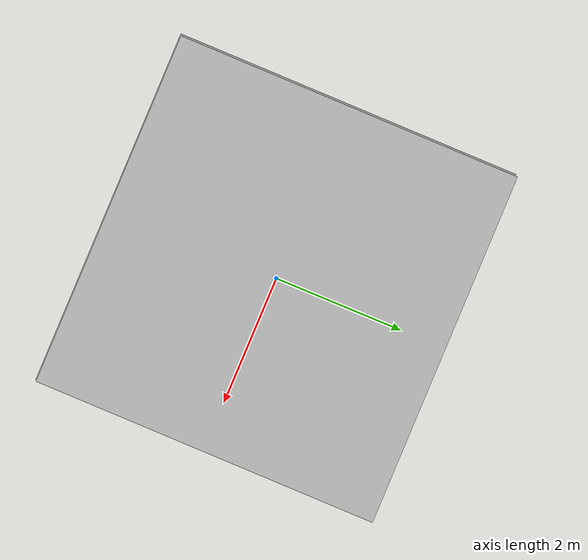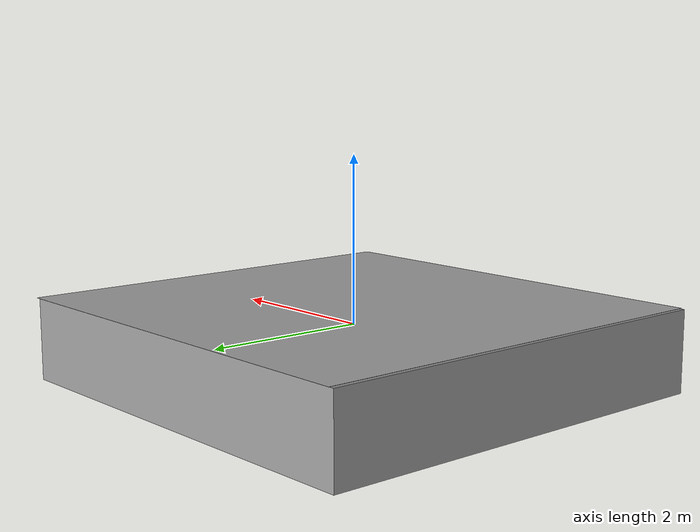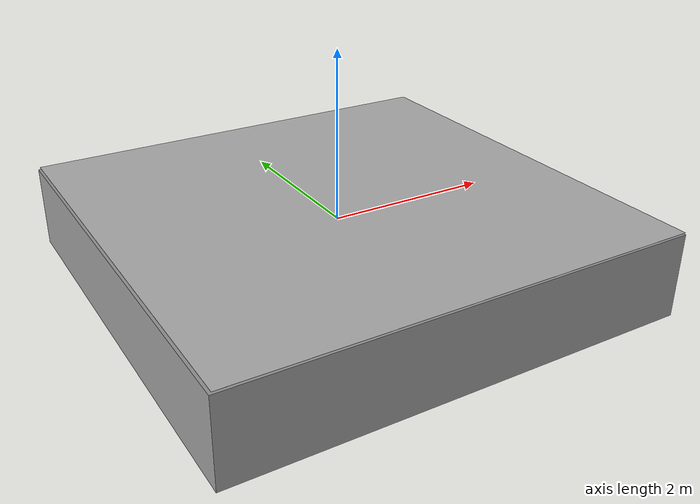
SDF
<?xml version='1.0'?>
<sdf version='1.6'>
  <model name='final_model'>
    <link name='link_0'>
      <pose frame=''>-0.010291 -0.012351 -0.256281 0 -0 0</pose>
      <inertial>
        <mass>28.9093</mass>
        <inertia>
          <ixx>69.8317</ixx>
          <ixy>0</ixy>
          <ixz>0</ixz>
          <iyy>74.3513</iyy>
          <iyz>0</iyz>
          <izz>139.365</izz>
        </inertia>
        <pose frame=''>0 0 0 0 -0 0</pose>
      </inertial>
      <gravity>1</gravity>
      <self_collide>0</self_collide>
      <kinematic>0</kinematic>
      <visual name='visual'>
        <pose frame=''>0 0 0 0 -0 0</pose>
        <geometry>
          <box>
            <size>5.46466 5.29024 1</size>
          </box>
        </geometry>
        <material>
          <lighting>1</lighting>
          <script>
            <uri>file://media/materials/scripts/gazebo.material</uri>
            <name>Gazebo/Grey</name>
          </script>
          <ambient>0.3 0.3 0.3 1</ambient>
          <diffuse>0.7 0.7 0.7 1</diffuse>
          <specular>0.01 0.01 0.01 1</specular>
          <emissive>0 0 0 1</emissive>
          <shader type='vertex'>
            <normal_map>__default__</normal_map>
          </shader>
        </material>
        <cast_shadows>1</cast_shadows>
        <transparency>0</transparency>
      </visual>
      <collision name='collision'>
        <laser_retro>0</laser_retro>
        <max_contacts>10</max_contacts>
        <pose frame=''>0 0 0 0 -0 0</pose>
        <geometry>
          <box>
            <size>5.46466 5.29024 1</size>
          </box>
        </geometry>
        <surface>
          <friction>
            <ode>
              <mu>1</mu>
              <mu2>1</mu2>
              <fdir1>0 0 0</fdir1>
              <slip1>0</slip1>
              <slip2>0</slip2>
            </ode>
            <torsional>
              <coefficient>1</coefficient>
              <patch_radius>0</patch_radius>
              <surface_radius>0</surface_radius>
              <use_patch_radius>1</use_patch_radius>
              <ode>
                <slip>0</slip>
              </ode>
            </torsional>
          </friction>
          <bounce>
            <restitution_coefficient>0</restitution_coefficient>
            <threshold>1e+06</threshold>
          </bounce>
          <contact>
            <collide_without_contact>0</collide_without_contact>
            <collide_without_contact_bitmask>1</collide_without_contact_bitmask>
            <collide_bitmask>1</collide_bitmask>
            <ode>
              <soft_cfm>0</soft_cfm>
              <soft_erp>0.2</soft_erp>
              <kp>1e+13</kp>
              <kd>1</kd>
              <max_vel>0.01</max_vel>
              <min_depth>0</min_depth>
            </ode>
            <bullet>
              <split_impulse>1</split_impulse>
              <split_impulse_penetration_threshold>-0.01</split_impulse_penetration_threshold>
              <soft_cfm>0</soft_cfm>
              <soft_erp>0.2</soft_erp>
              <kp>1e+13</kp>
              <kd>1</kd>
            </bullet>
          </contact>
        </surface>
      </collision>
    </link>
    <model name='test3'>
      <link name='link_3'>
        <pose frame=''>0 4e-06 0 0 -0 0</pose>
        <inertial>
          <mass>0.0471795</mass>
          <inertia>
            <ixx>0.110645</ixx>
            <ixy>0</ixy>
            <ixz>0</ixz>
            <iyy>0.116649</iyy>
            <iyz>0</iyz>
            <izz>0.227294</izz>
          </inertia>
          <pose frame=''>0 0 0 0 -0 0</pose>
        </inertial>
        <visual name='visual'>
          <pose frame=''>0 0 0 0 -0 0</pose>
          <geometry>
            <box>
              <size>5.44696 5.30492 0.001623</size>
            </box>
          </geometry>
          <material>
            <lighting>1</lighting>
            <script>
              <uri>model://test3/materials/scripts</uri>
              <uri>model://test3/materials/textures</uri>
              <name>test3/Diffuse</name>
            </script>
            <ambient>0.3 0.3 0.3 1</ambient>
            <diffuse>0.7 0.7 0.7 1</diffuse>
            <specular>0.01 0.01 0.01 1</specular>
            <emissive>0 0 0 1</emissive>
          </material>
          <cast_shadows>1</cast_shadows>
          <transparency>0</transparency>
        </visual>
        <collision name='collision'>
          <laser_retro>0</laser_retro>
          <max_contacts>10</max_contacts>
          <pose frame=''>0 0 0 0 -0 0</pose>
          <geometry>
            <box>
              <size>5.44696 5.30492 0.001623</size>
            </box>
          </geometry>
          <surface>
            <friction>
              <ode>
                <mu>1</mu>
                <mu2>1</mu2>
                <fdir1>0 0 0</fdir1>
                <slip1>0</slip1>
                <slip2>0</slip2>
              </ode>
              <torsional>
                <coefficient>1</coefficient>
                <patch_radius>0</patch_radius>
                <surface_radius>0</surface_radius>
                <use_patch_radius>1</use_patch_radius>
                <ode>
                  <slip>0</slip>
                </ode>
              </torsional>
            </friction>
            <bounce>
              <restitution_coefficient>0</restitution_coefficient>
              <threshold>1e+06</threshold>
            </bounce>
            <contact>
              <collide_without_contact>0</collide_without_contact>
              <collide_without_contact_bitmask>1</collide_without_contact_bitmask>
              <collide_bitmask>1</collide_bitmask>
              <ode>
                <soft_cfm>0</soft_cfm>
                <soft_erp>0.2</soft_erp>
                <kp>1e+13</kp>
                <kd>1</kd>
                <max_vel>0.01</max_vel>
                <min_depth>0</min_depth>
              </ode>
              <bullet>
                <split_impulse>1</split_impulse>
                <split_impulse_penetration_threshold>-0.01</split_impulse_penetration_threshold>
                <soft_cfm>0</soft_cfm>
                <soft_erp>0.2</soft_erp>
                <kp>1e+13</kp>
                <kd>1</kd>
              </bullet>
            </contact>
          </surface>
        </collision>
      </link>
      <static>0</static>
      <allow_auto_disable>1</allow_auto_disable>
      <pose frame=''>0.010292 0.01235 0.256278 0 -0 0</pose>
    </model>
    <static>0</static>
    <allow_auto_disable>1</allow_auto_disable>
  </model>
</sdf>
